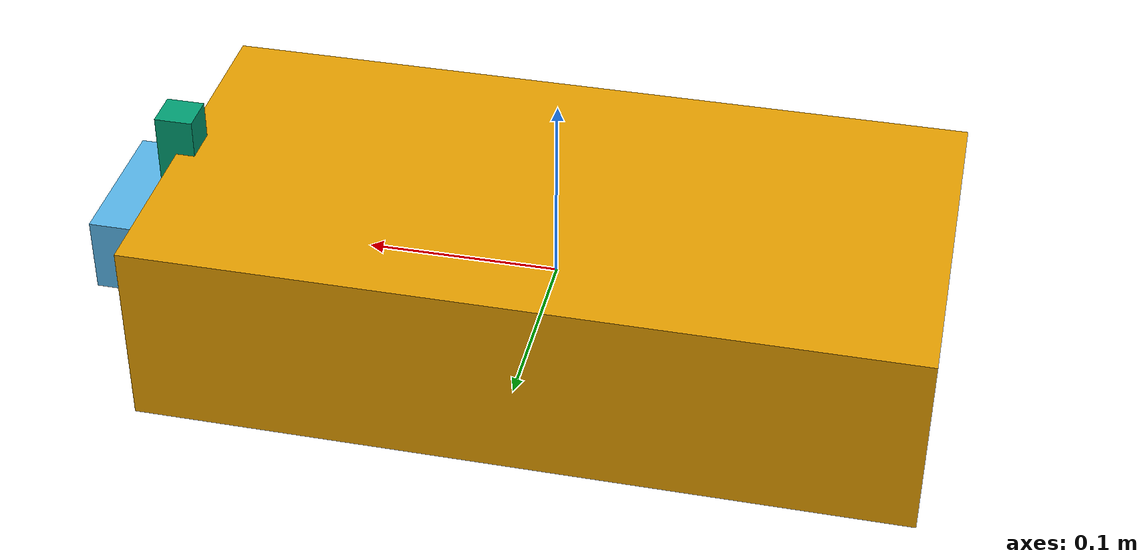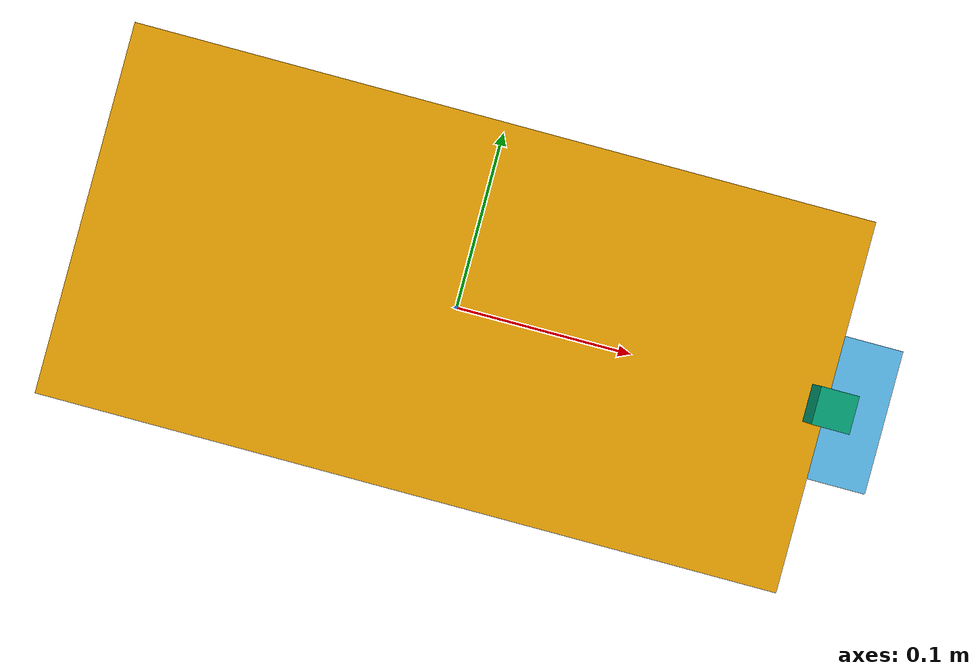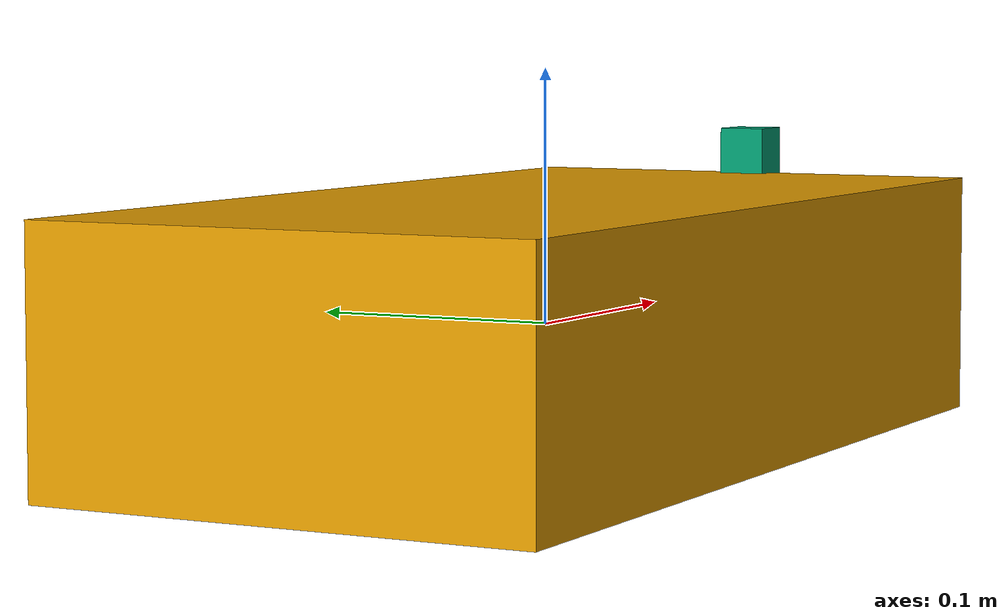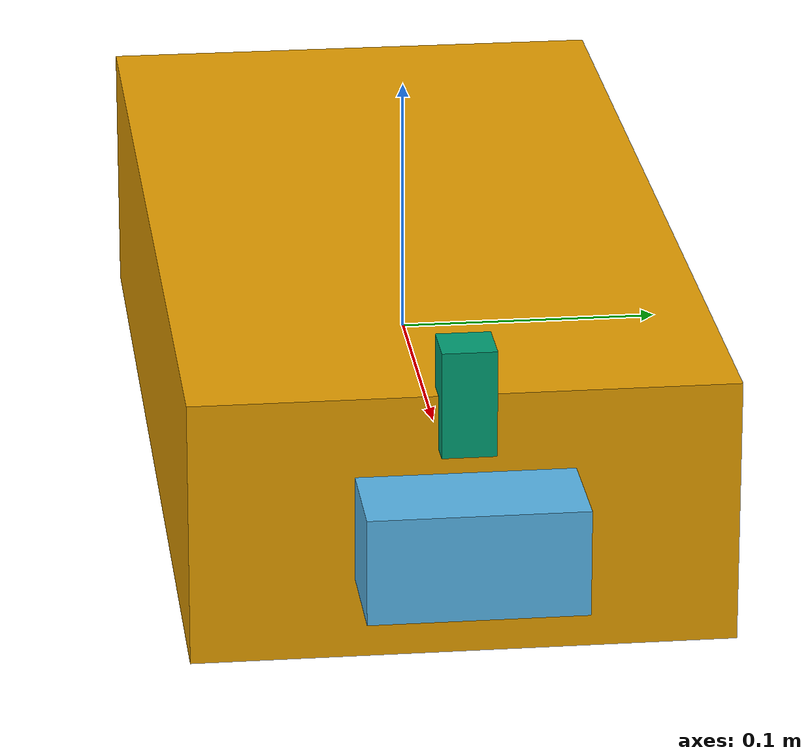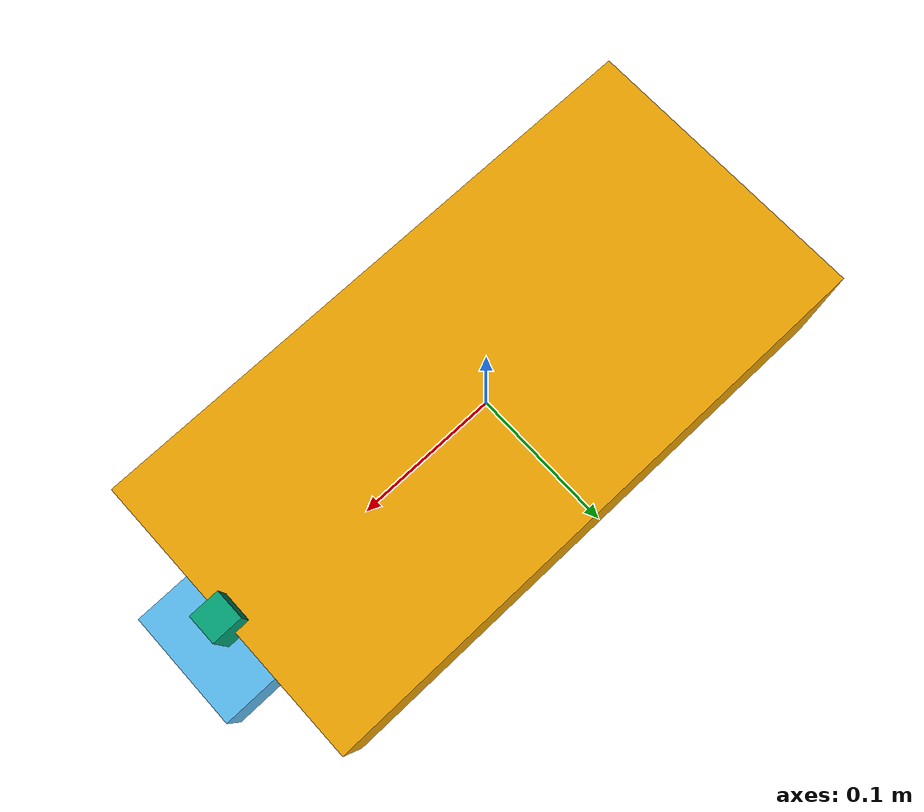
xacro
<?xml version="1.0"?>
<robot name="simple_robot" xmlns:xacro="http://www.ros.org/wiki/xacro">
  <xacro:arg name="tool_offset" default="0.20"/>
  <xacro:arg name="include_alignment_pin" default="true"/>

  <xacro:property name="base_length" value="0.40"/>
  <xacro:property name="base_width" value="0.20"/>
  <xacro:property name="base_height" value="0.10"/>
  <xacro:property name="tool_size_xy" value="0.08"/>
  <xacro:property name="tool_size_z" value="0.04"/>

  <link name="base_link">
    <visual>
      <geometry>
        <box size="${base_length} ${base_width} ${base_height}"/>
      </geometry>
    </visual>
    <collision>
      <geometry>
        <box size="${base_length} ${base_width} ${base_height}"/>
      </geometry>
    </collision>
  </link>

  <link name="tool_flange">
    <visual>
      <geometry>
        <box size="${tool_size_xy} ${tool_size_xy} ${tool_size_z}"/>
      </geometry>
    </visual>
    <collision>
      <geometry>
        <box size="${tool_size_xy} ${tool_size_xy} ${tool_size_z}"/>
      </geometry>
    </collision>
  </link>

  <joint name="tool_mount_joint" type="fixed">
    <parent link="base_link"/>
    <child link="tool_flange"/>
    <origin xyz="$(arg tool_offset) 0.0 0.0" rpy="0 0 0"/>
  </joint>

  <xacro:if value="$(arg include_alignment_pin)">
    <link name="alignment_pin">
      <visual>
        <geometry>
          <box size="0.02 0.02 0.04"/>
        </geometry>
      </visual>
      <collision>
        <geometry>
          <box size="0.02 0.02 0.04"/>
        </geometry>
      </collision>
    </link>

    <joint name="alignment_pin_joint" type="fixed">
      <parent link="base_link"/>
      <child link="alignment_pin"/>
      <origin xyz="${base_length / 2} 0.0 ${base_height / 2}" rpy="0 0 0"/>
    </joint>
  </xacro:if>
</robot>
